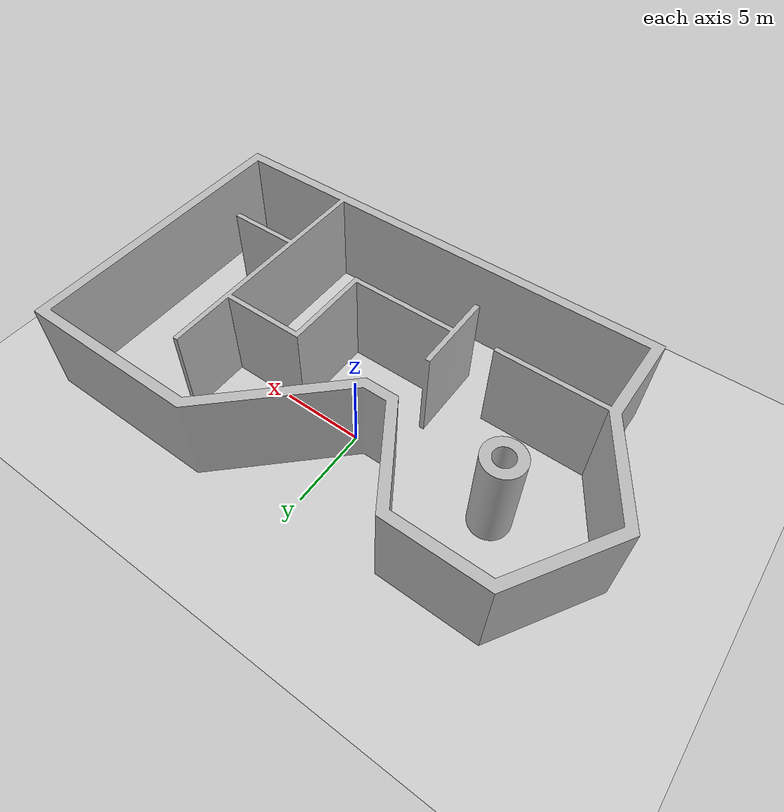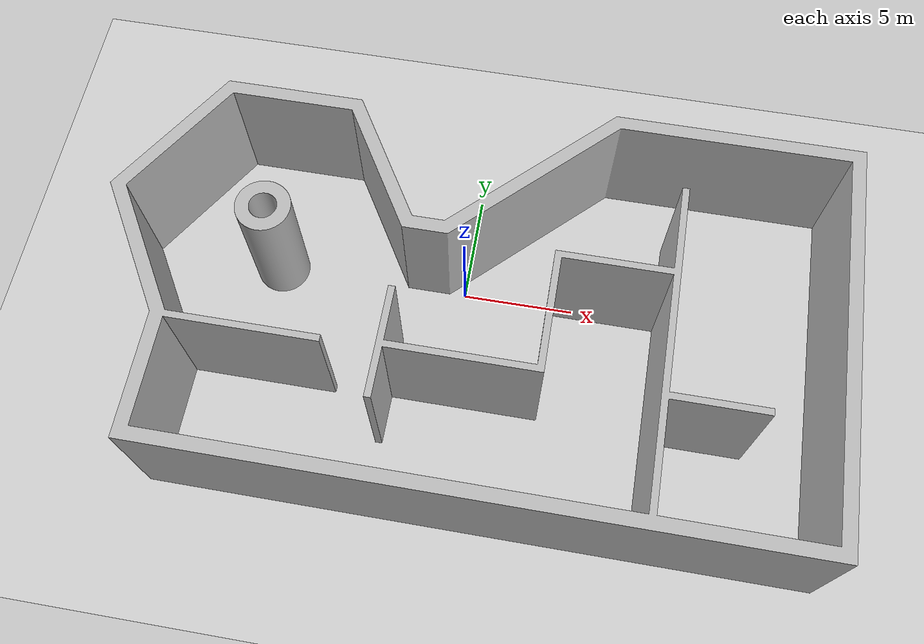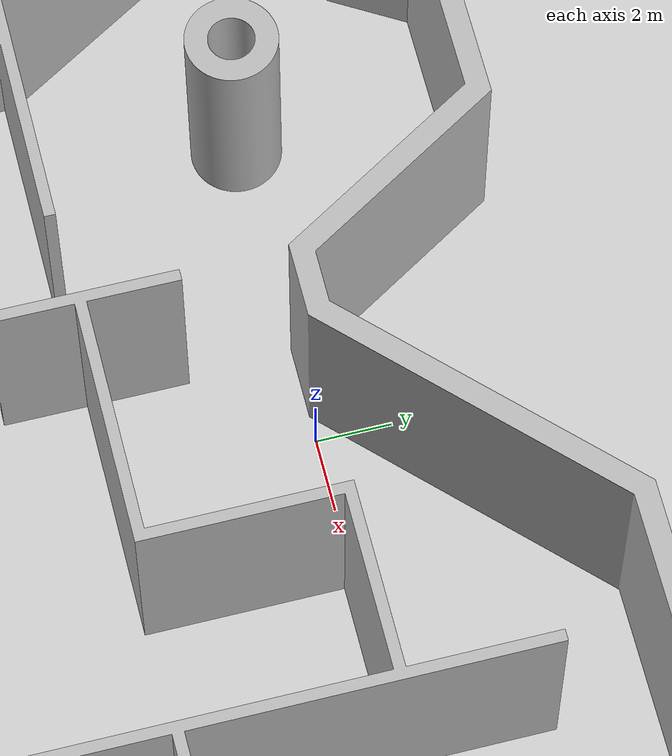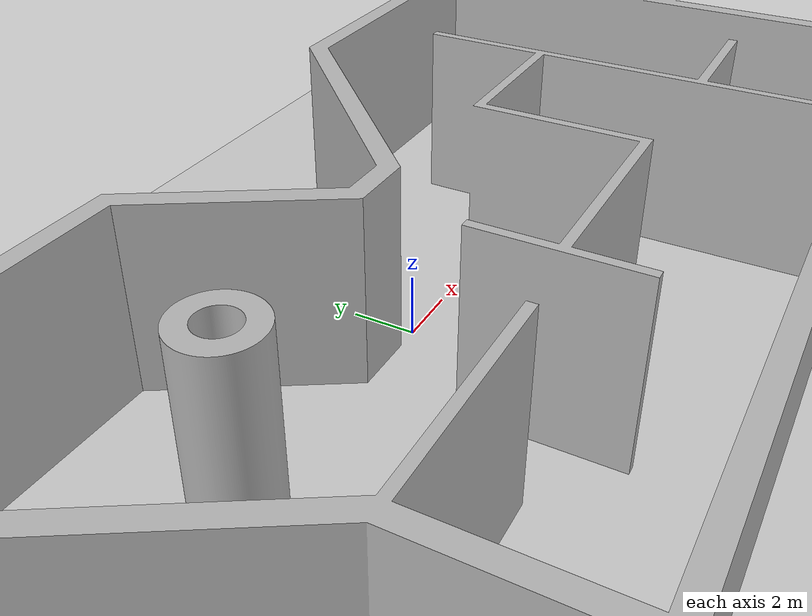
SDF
<sdf version="1.6">
 <world name="default">
  <physics type="ode">
   <max_step_size>0.02</max_step_size>
   <real_time_factor>1.0</real_time_factor>
   <real_time_update_rate>50</real_time_update_rate>
  </physics>
  <plugin name="gz::sim::systems::Physics" filename="libgz-sim-physics-system.so"/>
  <plugin name="gz::sim::systems::UserCommands" filename="libgz-sim-user-commands-system.so"/>
  <plugin name="gz::sim::systems::SceneBroadcaster" filename="libgz-sim-scene-broadcaster-system.so"/>
  <plugin name="gz::sim::systems::Sensors" filename="libgz-sim-sensors-system.so">
   <render_engine>ogre2</render_engine>
  </plugin>
  <plugin name="gz::sim::systems::Imu" filename="libgz-sim-imu-system.so"/>
  <plugin name="gz::sim::systems::NavSat" filename="libgz-sim-navsat-system.so"/>
  <scene>
   <ambient>1 1 1 1</ambient>
   <background>0.3 0.7 0.9 1</background>
   <shadows>0</shadows>
   <grid>false</grid>
   <sky><clouds><speed>12</speed></clouds></sky>
   <shadows>1</shadows>
  </scene>
  <light name="sun" type="directional">
   <pose>0 0 10 0 -0 0</pose>
   <diffuse>1.0 1.0 1.0 1</diffuse>
   <specular>0.2 0.2 0.2 1</specular>
   <attenuation>
    <range>1000</range>
    <constant>0.9</constant>
    <linear>0.01</linear>
    <quadratic>0.001</quadratic>
   </attenuation>
   <direction>-0.5 0.5 -1.0</direction>
  </light>
  <spherical_coordinates>
   <surface_model>EARTH_WGS84</surface_model>
   <latitude_deg>39.551908</latitude_deg>
   <longitude_deg>-0.468661</longitude_deg>
   <elevation>108</elevation>
   <heading_deg>0</heading_deg>
  </spherical_coordinates>
  <model name="ground_plane">
   <static>true</static>
   <link name="link">
    <collision name="collision"><geometry><plane><normal>0 0 1</normal></plane></geometry></collision>
    <visual name="visual">
     <geometry><plane><normal>0 0 1</normal><size>100 100</size></plane></geometry>
     <material>
      <ambient>0.8 0.8 0.8 1</ambient>
      <diffuse>0.8 0.8 0.8 1</diffuse>
      <specular>0.8 0.8 0.8 1</specular>
     </material>
    </visual>
   </link>
  </model>
  <gravity>0 0 -9.8</gravity>
  <magnetic_field>6e-06 2.3e-05 -4.2e-05</magnetic_field>
  <atmosphere type="adiabatic"/>
  <model name="origin_axes">
   <static>true</static>
   <link name="linkX">
    <visual name="x_axis">
     <pose>0.5 0 0 0 1.57 0</pose>
     <geometry><cylinder><radius>0.02</radius><length>1</length></cylinder></geometry>
     <material><ambient>1 0 0 1</ambient><diffuse>1 0 0 1</diffuse></material>
    </visual>
   </link>
   <link name="linkY">
    <visual name="y_axis">
     <pose>0 0.5 0 -1.57 0 0</pose>
     <geometry><cylinder><radius>0.02</radius><length>1</length></cylinder></geometry>
     <material><ambient>0 1 0 1</ambient><diffuse>0 1 0 1</diffuse></material>
    </visual>
   </link>
   <link name="linkZ">
    <visual name="z_axis">
     <pose>0 0 0.5 0 0 1.57</pose>
     <geometry><cylinder><radius>0.02</radius><length>1</length></cylinder></geometry>
     <material><ambient>0 0 1 1</ambient><diffuse>0 0 1 1</diffuse></material>
    </visual>
   </link>
  </model>
  <model name="demo">
   <static>true</static>
   <link name="demo_link">
    <visual name="visual">
     <geometry><mesh><uri>file:///renee/src/renee_rbvogui_navigation/mesh/gz_world.stl</uri></mesh></geometry>
    </visual>
    <collision name="collision">
     <geometry><mesh><uri>file:///renee/src/renee_rbvogui_navigation/mesh/gz_world.stl</uri></mesh></geometry>
    </collision>
   </link>
  </model>
 </world>
</sdf>
